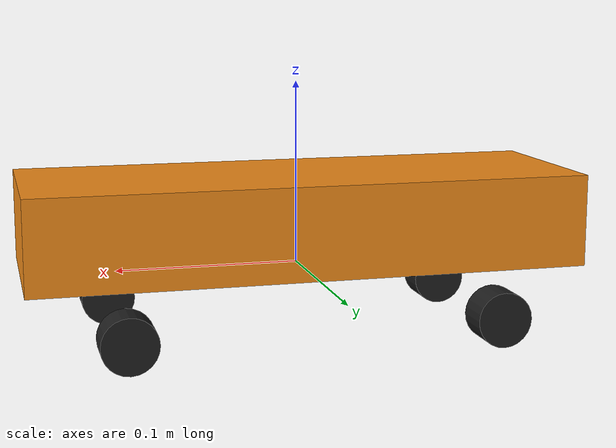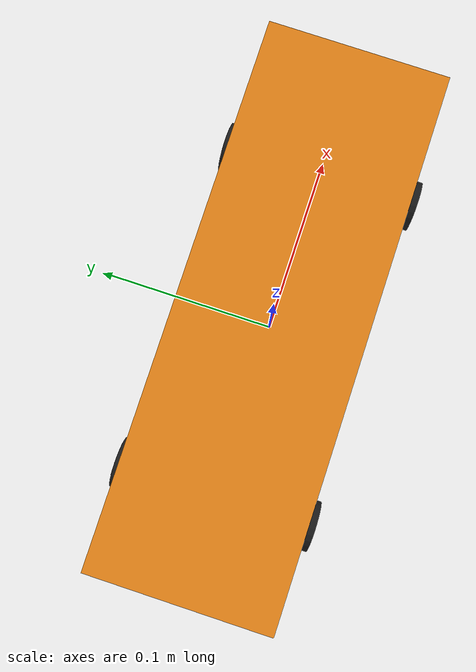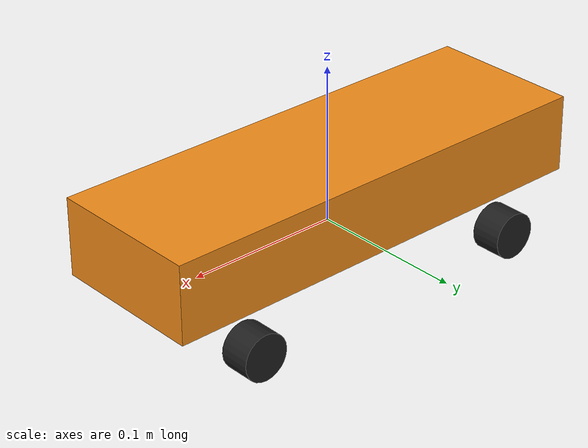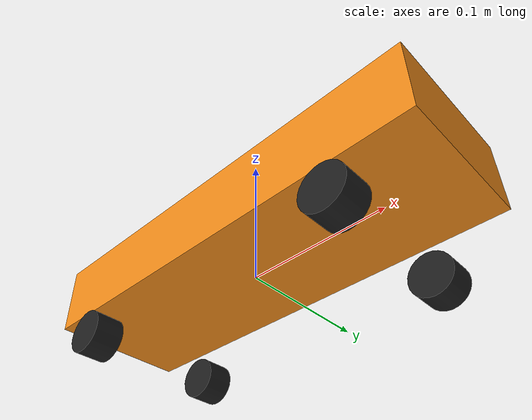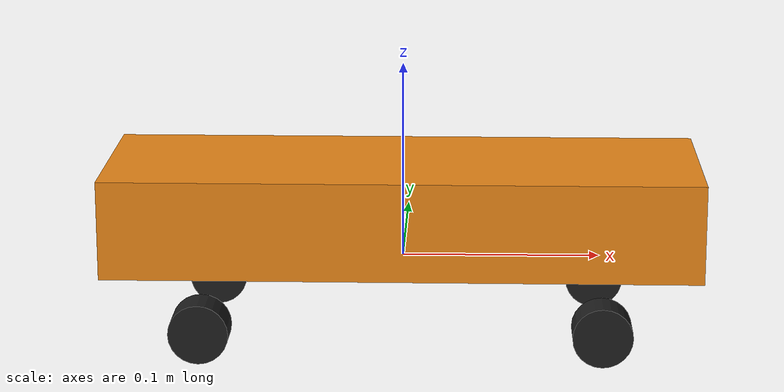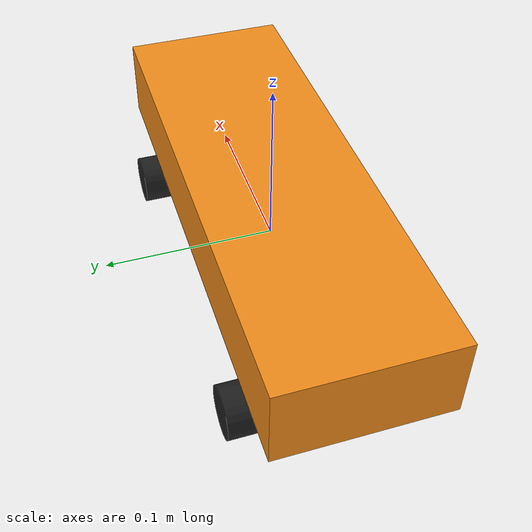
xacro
<?xml version="1.0"?>
<!-- Basic differential drive mobile base -->
<robot xmlns:xacro="http://www.ros.org/wiki/xacro" name="diffdrive_robot">
  <xacro:arg name="prefix" default="" />
  <xacro:arg name="use_mock_hardware" default="false" />
  <xacro:arg name="use_sim_time" default="false" />

  <xacro:include filename="$(find ros2_control_demo_description)/diffbot/urdf/diffbot_description.urdf.xacro" />

  <!-- Import Rviz colors -->
  <xacro:include filename="$(find ros2_control_demo_description)/diffbot/urdf/diffbot.materials.xacro" />

  <!-- Import diffbot ros2_control description -->
  <xacro:include filename="$(find ros2_control_demo_example_2)/ros2_control/diffbot.ros2_control.xacro" />

  <xacro:diffbot prefix="$(arg prefix)" />

  <xacro:diffbot_ros2_control
    name="DiffBot" prefix="$(arg prefix)" use_mock_hardware="$(arg use_mock_hardware)" use_sim_time="$(arg use_sim_time)"/>

</robot>

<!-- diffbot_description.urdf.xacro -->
<robot xmlns:xacro="http://www.ros.org/wiki/xacro">

  <xacro:macro name="diffbot" params="prefix">

  <!-- Constants for robot dimensions -->
  <xacro:property name="PI" value="3.1415926535897931"/>
  <xacro:property name="base_mass" value="0.3" /> <!-- arbitrary value for base mass -->
  <xacro:property name="base_width" value="0.1" />
  <xacro:property name="base_length" value="0.3" /> <!-- Increased length to accommodate 4 wheels -->
  <xacro:property name="base_height" value="0.05" />
  <xacro:property name="wheel_mass" value="0.3" /> <!-- arbitrary value for wheel mass -->
  <xacro:property name="wheel_len" value="0.020" />
  <xacro:property name="wheel_radius" value="0.015" />
  <xacro:property name="wheel_separation_x" value="0.2" /> <!-- Separation between front and rear wheels -->
  <xacro:property name="caster_wheel_mass" value="0.1" /> <!-- arbitrary value for caster wheel mass -->
  <xacro:property name="caster_wheel_radius" value="0.015" />
  <xacro:property name="z_offset" value="-${base_height/2}" /> <!-- Space btw top of beam and the each joint -->

  <!-- Base Link -->
  <link name="${prefix}base_link">
    <collision>
      <origin xyz="0 0 0" rpy="0 0 0"/>
      <geometry>
        <box size="${base_length} ${base_width} ${base_height}"/>
      </geometry>
    </collision>

    <visual>
      <origin xyz="0 0 ${base_height/2}" rpy="0 0 0"/>
      <geometry>
        <box size="${base_length} ${base_width} ${base_height}"/>
      </geometry>
      <material name="orange"/>
    </visual>

    <inertial>
      <origin xyz="0 0 0" rpy="0 0 0"/>
      <mass value="${base_mass}"/>
      <inertia
        ixx="${base_mass / 12.0 * (base_width*base_width + base_height*base_height)}" ixy="0.0" ixz="0.0"
        iyy="${base_mass / 12.0 * (base_height*base_height + base_length*base_length)}" iyz="0.0"
        izz="${base_mass / 12.0 * (base_length*base_length + base_width*base_width)}"/>
      </inertial>
    </link>

    <!-- Front left wheel -->
    <joint name="${prefix}front_left_wheel_joint" type="continuous">
      <parent link="${prefix}base_link"/>
      <child link="${prefix}front_left_wheel"/>
      <origin xyz="${wheel_separation_x/2} -${base_width/2} ${z_offset}" rpy="0 0 0"/>
      <axis xyz="0 1 0"/>
      <dynamics damping="0.2"/>
      <limit effort="100" velocity="1.0"/>
    </joint>

    <link name="${prefix}front_left_wheel">
      <collision>
        <origin xyz="0 0 0" rpy="${PI/2} 0 0"/>
        <geometry>
          <cylinder length="${wheel_len}" radius="${wheel_radius}"/>
        </geometry>
      </collision>

      <visual>
        <origin xyz="0 0 0" rpy="${PI/2} 0 0"/>
        <geometry>
          <cylinder length="${wheel_len}" radius="${wheel_radius}"/>
        </geometry>
        <material name="black"/>
      </visual>

      <inertial>
        <origin xyz="0 0 0" rpy="${PI/2} 0 0"/>
        <mass value="${wheel_mass}"/>
        <inertia
          ixx="${wheel_mass / 12.0 * (3*wheel_radius*wheel_radius + wheel_len*wheel_len)}" ixy="0.0" ixz="0.0"
          iyy="${wheel_mass / 12.0 * (3*wheel_radius*wheel_radius + wheel_len*wheel_len)}" iyz="0.0"
          izz="${wheel_mass / 2.0 * wheel_radius*wheel_radius}"/>
        </inertial>
      </link>

    <!-- Rear left wheel -->
    <joint name="${prefix}rear_left_wheel_joint" type="continuous">
      <parent link="${prefix}base_link"/>
      <child link="${prefix}rear_left_wheel"/>
      <origin xyz="${-wheel_separation_x/2} -${base_width/2} ${z_offset}" rpy="0 0 0"/>
      <axis xyz="0 1 0"/>
      <dynamics damping="0.2"/>
      <limit effort="100" velocity="1.0"/>
    </joint>

    <link name="${prefix}rear_left_wheel">
      <collision>
        <origin xyz="0 0 0" rpy="${PI/2} 0 0"/>
        <geometry>
          <cylinder length="${wheel_len}" radius="${wheel_radius}"/>
        </geometry>
      </collision>

      <visual>
        <origin xyz="0 0 0" rpy="${PI/2} 0 0"/>
        <geometry>
          <cylinder length="${wheel_len}" radius="${wheel_radius}"/>
        </geometry>
        <material name="black"/>
      </visual>

      <inertial>
        <origin xyz="0 0 0" rpy="${PI/2} 0 0"/>
        <mass value="${wheel_mass}"/>
        <inertia
          ixx="${wheel_mass / 12.0 * (3*wheel_radius*wheel_radius + wheel_len*wheel_len)}" ixy="0.0" ixz="0.0"
          iyy="${wheel_mass / 12.0 * (3*wheel_radius*wheel_radius + wheel_len*wheel_len)}" iyz="0.0"
          izz="${wheel_mass / 2.0 * wheel_radius*wheel_radius}"/>
        </inertial>
      </link>

    <!-- Front right wheel -->
    <joint name="${prefix}front_right_wheel_joint" type="continuous">
      <parent link="${prefix}base_link"/>
      <child link="${prefix}front_right_wheel"/>
      <origin xyz="${wheel_separation_x/2} ${base_width/2} ${z_offset}" rpy="0 0 0"/>
      <axis xyz="0 1 0"/>
      <dynamics damping="0.2"/>
      <limit effort="100" velocity="1.0"/>
    </joint>

    <link name="${prefix}front_right_wheel">
      <collision>
        <origin xyz="0 0 0" rpy="${PI/2} 0 0"/>
        <geometry>
          <cylinder length="${wheel_len}" radius="${wheel_radius}"/>
        </geometry>
      </collision>

      <visual>
        <origin xyz="0 0 0" rpy="${PI/2} 0 0"/>
        <geometry>
          <cylinder length="${wheel_len}" radius="${wheel_radius}"/>
        </geometry>
        <material name="black"/>
      </visual>

      <inertial>
        <origin xyz="0 0 0" rpy="${PI/2} 0 0"/>
        <mass value="${wheel_mass}"/>
        <inertia
          ixx="${wheel_mass / 12.0 * (3*wheel_radius*wheel_radius + wheel_len*wheel_len)}" ixy="0.0" ixz="0.0"
          iyy="${wheel_mass / 12.0 * (3*wheel_radius*wheel_radius + wheel_len*wheel_len)}" iyz="0.0"
          izz="${wheel_mass / 2.0 * wheel_radius*wheel_radius}"/>
        </inertial>
      </link>

    <!-- Rear right wheel -->
    <joint name="${prefix}rear_right_wheel_joint" type="continuous">
      <parent link="${prefix}base_link"/>
      <child link="${prefix}rear_right_wheel"/>
      <origin xyz="${-wheel_separation_x/2} ${base_width/2} ${z_offset}" rpy="0 0 0"/>
      <axis xyz="0 1 0"/>
      <dynamics damping="0.2"/>
      <limit effort="100" velocity="1.0"/>
    </joint>

    <link name="${prefix}rear_right_wheel">
      <collision>
        <origin xyz="0 0 0" rpy="${PI/2} 0 0"/>
        <geometry>
          <cylinder length="${wheel_len}" radius="${wheel_radius}"/>
        </geometry>
      </collision>

      <visual>
        <origin xyz="0 0 0" rpy="${PI/2} 0 0"/>
        <geometry>
          <cylinder length="${wheel_len}" radius="${wheel_radius}"/>
        </geometry>
        <material name="black"/>
      </visual>

      <inertial>
        <origin xyz="0 0 0" rpy="${PI/2} 0 0"/>
        <mass value="${wheel_mass}"/>
        <inertia
          ixx="${wheel_mass / 12.0 * (3*wheel_radius*wheel_radius + wheel_len*wheel_len)}" ixy="0.0" ixz="0.0"
          iyy="${wheel_mass / 12.0 * (3*wheel_radius*wheel_radius + wheel_len*wheel_len)}" iyz="0.0"
          izz="${wheel_mass / 2.0 * wheel_radius*wheel_radius}"/>
        </inertial>
      </link>

  </xacro:macro>

</robot>
